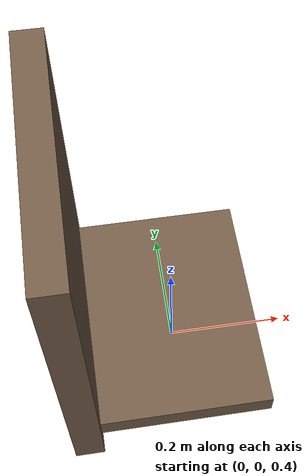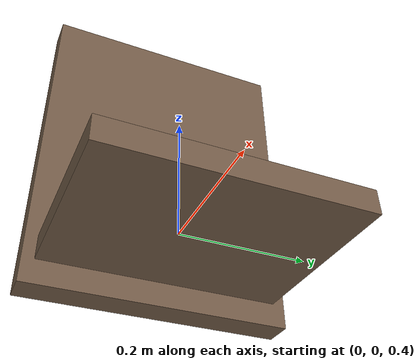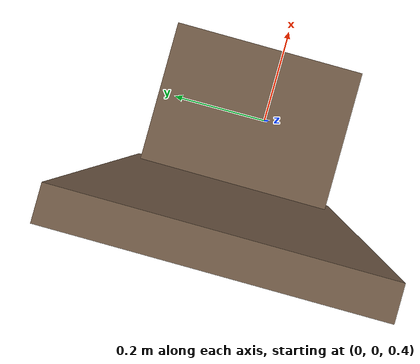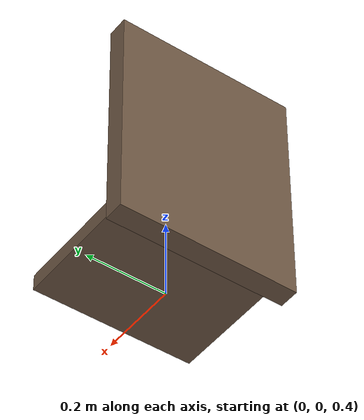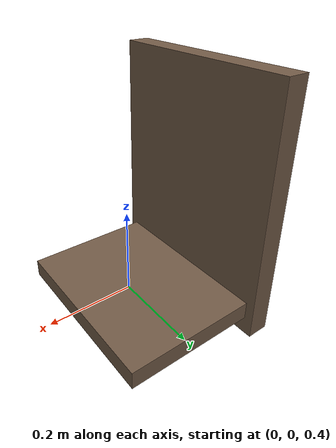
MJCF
<mujoco model="x3f2_chair">
  <compiler angle="radian" autolimits="true"/>

  <default>
    <geom contype="1" conaffinity="1" condim="3" friction="1.0 0.005 0.0001"/>
  </default>

  <asset>
    <material name="chair_seat" rgba="0.45 0.36 0.28 1"/>
    <material name="chair_frame" rgba="0.18 0.18 0.18 1"/>
  </asset>

  <worldbody>

    <body name="chair" pos="0 0.03 0" quat="1 0 0 0">
      <geom name="seat" type="box" size="0.15 0.20 0.02" pos="0 0 0.42" material="chair_seat"/>
      <geom name="back_rest" type="box" size="0.025 0.22 0.28" pos="-0.17 0 0.64" material="chair_seat"/>
    </body>

  </worldbody>
</mujoco>
